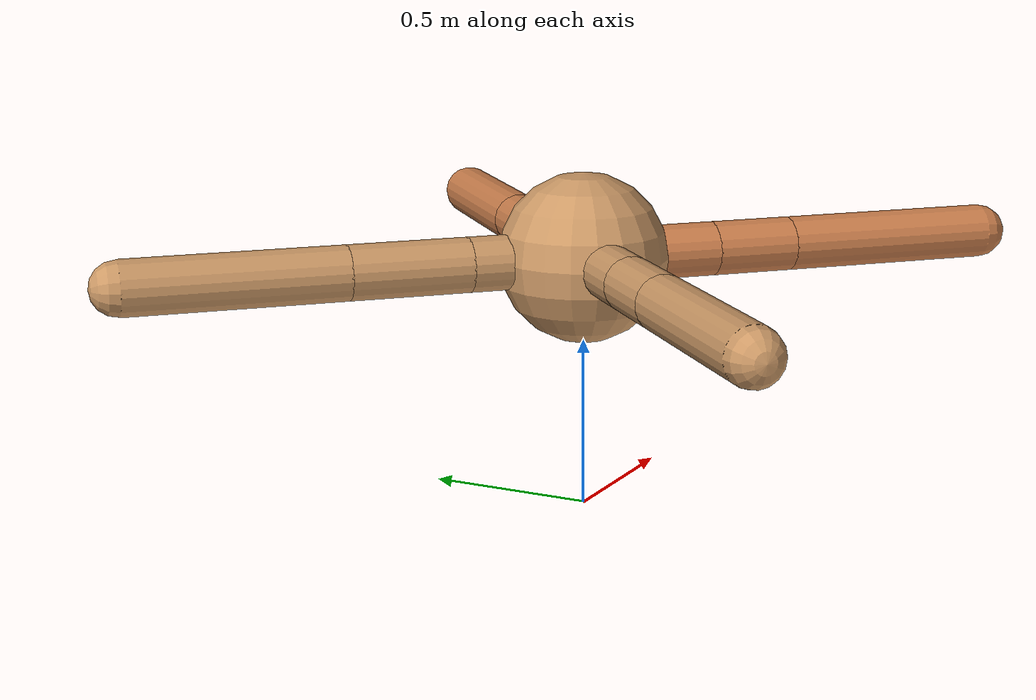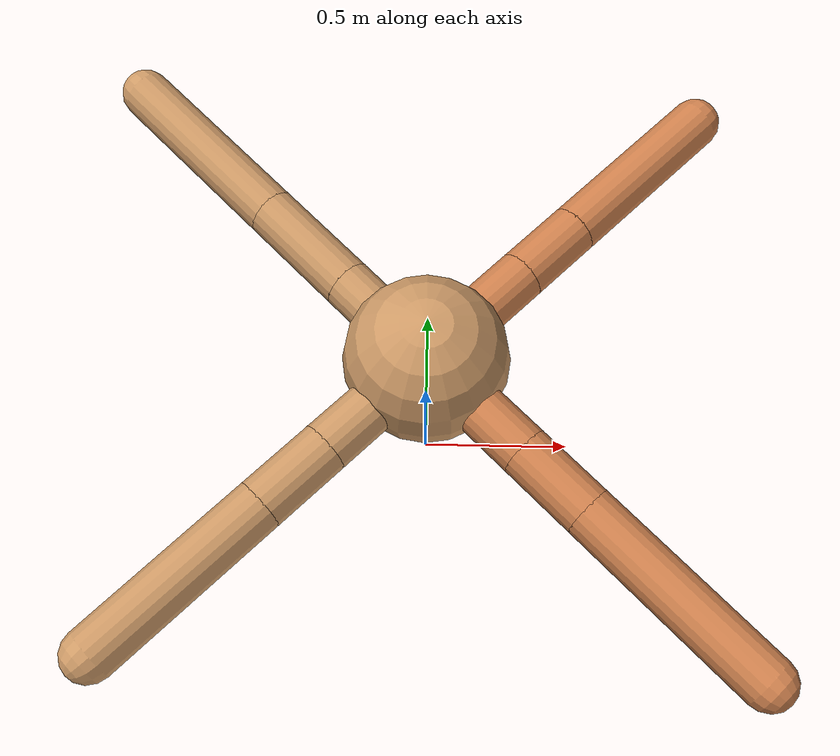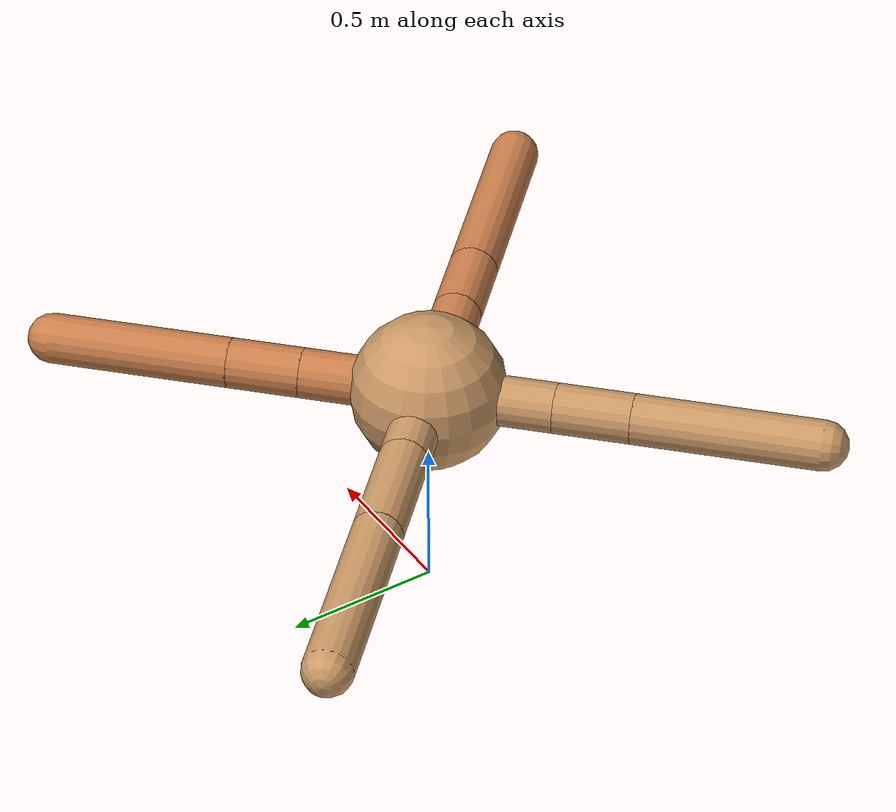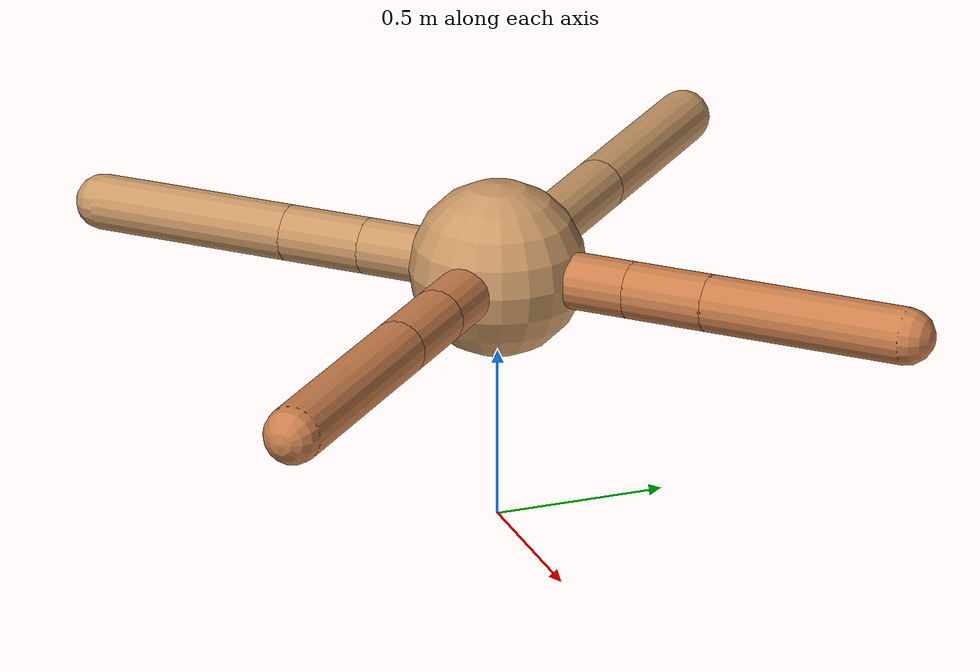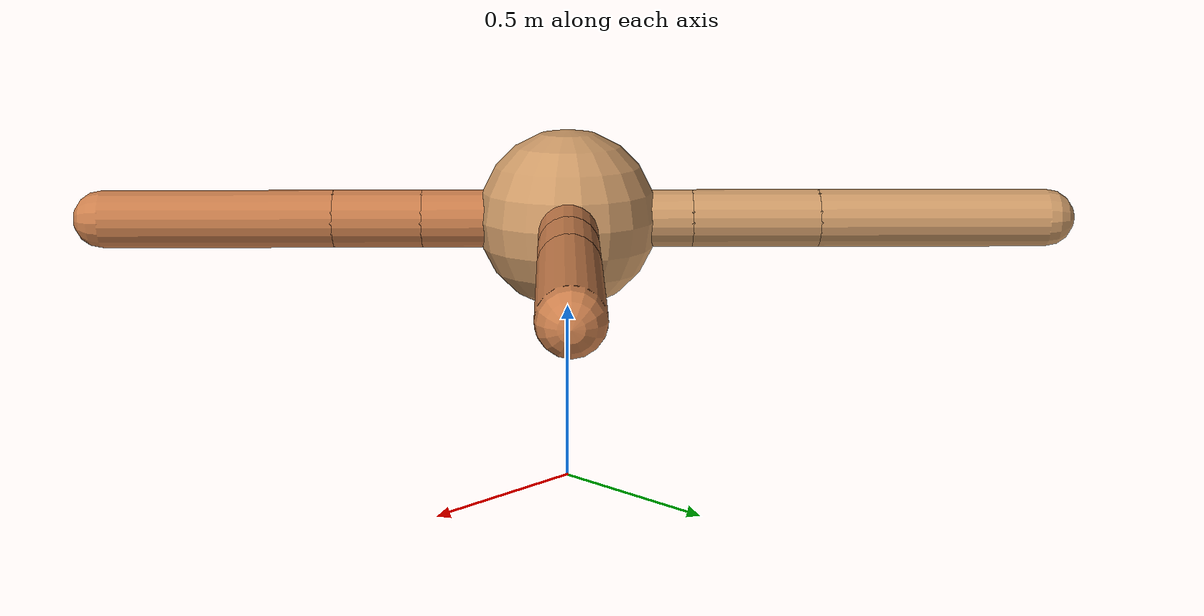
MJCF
<mujoco model="ant">
  <compiler angle="degree" coordinate="local" inertiafromgeom="true" />
  <option integrator="RK4" timestep="0.01" />
  <custom>
    <numeric data="0.0 0.0 0.55 1.0 0.0 0.0 0.0 0.0 1.0 0.0 -1.0 0.0 -1.0 0.0 1.0" name="init_qpos" />
  </custom>
  <default>
    <joint armature="1" damping="1" limited="true" />
    <geom conaffinity="0" condim="3" density="5.0" friction="1.5 0.1 0.1" margin="0.01" rgba="0.8 0.6 0.4 1" />
  </default>
  <worldbody>
    <body name="torso" pos="0 0 0.75">
      <geom name="torso_geom" pos="0 0 0" size="0.25" type="sphere" />

      <body name="front_left_leg" pos="0 0 0">
        <geom fromto="0.0 0.0 0.0 0.28662819121411803 0.28662819121411803 0.0" name="aux_1_geom" size="0.08" type="capsule" rgba=".8 .5 .3 1" />
        <body name="aux_1" pos="0.28662819121411803 0.28662819121411803 0.0">
          <joint axis="0 0 1" name="hip_1" pos="0.0 0.0 0.0" range="-40 40" type="hinge" />
          <geom fromto="0.0 0.0 0.0 0.16511286760848973 0.16511286760848973 0.0" name="left_leg_geom" size="0.08" type="capsule" rgba=".8 .5 .3 1" />
          <body pos="0.16511286760848973 0.16511286760848973 0.0" name="front_left_foot">
            <joint axis="-1 1 0" name="ankle_1" pos="0.0 0.0 0.0" range="30 100" type="hinge" />
            <geom fromto="0.0 0.0 0.0 0.40958688838270146 0.40958688838270146 0.0" name="left_ankle_geom" size="0.08" type="capsule" rgba=".8 .5 .3 1" />
          </body>
        </body>
      </body>
      <body name="front_right_leg" pos="0 0 0">
        <geom fromto="0.0 0.0 0.0 -0.2449331992442123 0.2449331992442123 0.0" name="aux_2_geom" size="0.08" type="capsule" />
        <body name="aux_2" pos="-0.2449331992442123 0.2449331992442123 0.0">
          <joint axis="0 0 1" name="hip_2" pos="0.0 0.0 0.0" range="-40 40" type="hinge" />
          <geom fromto="0.0 0.0 0.0 -0.24921042994594297 0.24921042994594297 0.0" name="right_leg_geom" size="0.08" type="capsule" />
          <body pos="-0.24921042994594297 0.24921042994594297 0.0" name="front_right_foot">
            <joint axis="1 1 0" name="ankle_2" pos="0.0 0.0 0.0" range="-100 -30" type="hinge" />
            <geom fromto="0.0 0.0 0.0 -0.4499905629427267 0.4499905629427267 0.0" name="right_ankle_geom" size="0.08" type="capsule" />
          </body>
        </body>
      </body>
      <body name="left_back_leg" pos="0 0 0">
        <geom fromto="0.0 0.0 0.0 -0.2846071272804448 -0.2846071272804448 0.0" name="aux_3_geom" size="0.08" type="capsule" />
        <body name="aux_3" pos="-0.2846071272804448 -0.2846071272804448 0.0">
          <joint axis="0 0 1" name="hip_3" pos="0.0 0.0 0.0" range="-40 40" type="hinge" />
          <geom fromto="0.0 0.0 0.0 -0.1728601046861538 -0.1728601046861538 0.0" name="back_leg_geom" size="0.08" type="capsule" />
          <body pos="-0.1728601046861538 -0.1728601046861538 0.0" name="left_back_foot">
            <joint axis="-1 1 0" name="ankle_3" pos="0.0 0.0 0.0" range="-100 -30" type="hinge" />
            <geom fromto="0.0 0.0 0.0 -0.4211002045216038 -0.4211002045216038 0.0" name="third_ankle_geom" size="0.08" type="capsule" />
          </body>
        </body>
      </body>
      <body name="right_back_leg" pos="0 0 0">
        <geom fromto="0.0 0.0 0.0 0.2858387816434665 -0.2858387816434665 0.0" name="aux_4_geom" size="0.08" type="capsule" rgba=".8 .5 .3 1" />
        <body name="aux_4" pos="0.2858387816434665 -0.2858387816434665 0.0">
          <joint axis="0 0 1" name="hip_4" pos="0.0 0.0 0.0" range="-40 40" type="hinge" />
          <geom fromto="0.0 0.0 0.0 0.17393199822974478 -0.17393199822974478 0.0" name="rightback_leg_geom" size="0.08" type="capsule" rgba=".8 .5 .3 1" />
          <body pos="0.17393199822974478 -0.17393199822974478 0.0" name="right_back_foot">
            <joint axis="1 1 0" name="ankle_4" pos="0.0 0.0 0.0" range="30 100" type="hinge" />
            <geom fromto="0.0 0.0 0.0 0.4557270363419262 -0.4557270363419262 0.0" name="fourth_ankle_geom" size="0.08" type="capsule" rgba=".8 .5 .3 1" />
          </body>
        </body>
      </body>
    </body>
  </worldbody>
  <actuator>
    <motor ctrllimited="true" ctrlrange="-1.0 1.0" joint="hip_4" gear="150" />
    <motor ctrllimited="true" ctrlrange="-1.0 1.0" joint="ankle_4" gear="150" />
    <motor ctrllimited="true" ctrlrange="-1.0 1.0" joint="hip_1" gear="150" />
    <motor ctrllimited="true" ctrlrange="-1.0 1.0" joint="ankle_1" gear="150" />
    <motor ctrllimited="true" ctrlrange="-1.0 1.0" joint="hip_2" gear="150" />
    <motor ctrllimited="true" ctrlrange="-1.0 1.0" joint="ankle_2" gear="150" />
    <motor ctrllimited="true" ctrlrange="-1.0 1.0" joint="hip_3" gear="150" />
    <motor ctrllimited="true" ctrlrange="-1.0 1.0" joint="ankle_3" gear="150" />
  </actuator>
</mujoco>
